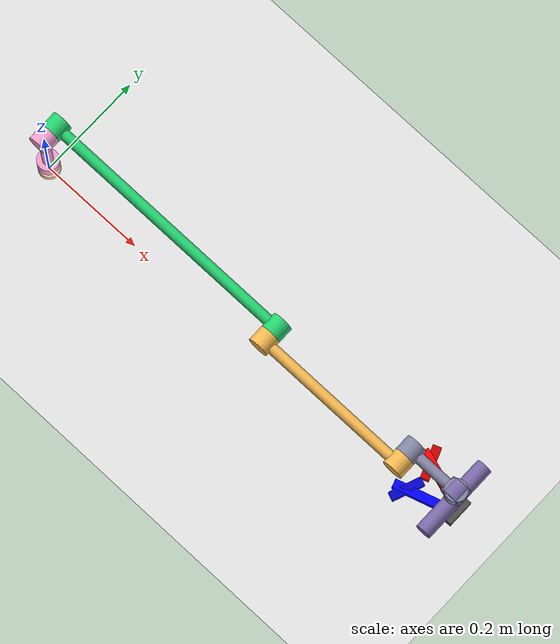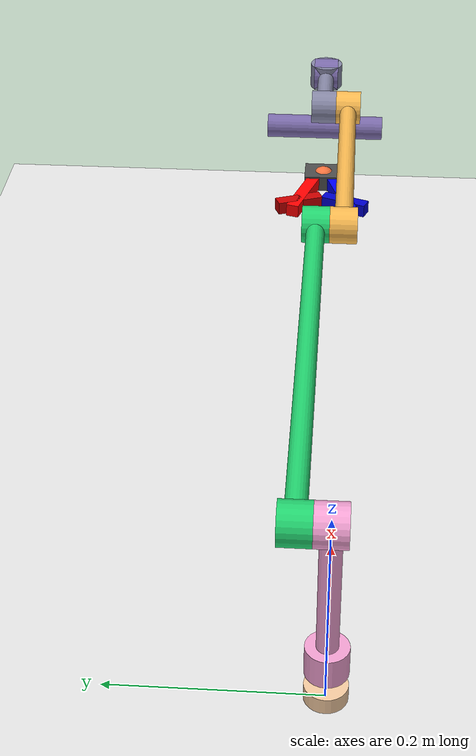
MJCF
<?xml version="1.0.0"?>
<mujoco model="arm2">
    <compiler angle="radian" inertiafromgeom="true" balanceinertia="true"/>
    <option integrator="implicitfast" timestep="0.002"/>

    <asset>
        <material name="joint_part1" rgba="0.525 0.713 0.662 1.0"/>
        <material name="joint_part2" rgba="0.462 0.196 0.411 1.0"/>
        <material name="base" rgba="0.956863 0.796078 0.631373 1.0"/>
        <material name="tip" rgba="0.956 0.450 0.243 1.0"/>
        <material name="link1" rgba="0.949 0.631 0.823 1.0"/>
        <material name="link2" rgba="0.133 0.827 0.435 1.0"/>
        <material name="link3" rgba="0.968 0.721 0.313 1.0"/>
        <material name="link4" rgba="0.52549 0.529412 0.647059 1.0"/>
        <material name="link5" rgba="0.478431 0.415686 0.662745 1.0"/>
    </asset>

    <worldbody>
        <!-- Ground plane -->
        <geom type="plane" size="1 1 0.1" rgba="0.9 0.9 0.9 1"/>

        <!-- Base link -->
        <body name="base_link" pos="0 0 0">
            <inertial pos="0 0 0.015" mass="1" diaginertia="1 1 1"/>
            <geom type="cylinder" size="0.02 0.015" material="base"/>
            <geom type="sphere" size="0.015" material="tip"/>

            <!-- Joint1 (prismatic, y-axis slide) aka left/right slide -->
            <body name="link1" pos="0 0 0.045">
                <inertial pos="0 0 0.075" mass="1" diaginertia="1 1 1"/>
                <joint name="joint1" type="slide" axis="0 1 0" pos="0 0 0" range="-0.5 0.5" damping="0.5"/>
                <geom type="cylinder" size="0.02 0.015" material="link1" pos="0 0 0"/>
                <geom type="cylinder" size="0.01 0.075" material="link1" pos="0 0 0.075"/>
                <geom type="cylinder" size="0.02 0.015" material="link1" pos="0 0 0.15" euler="1.5708 0 0"/>

                <!-- Joint2 (shoulder pitch, y-axis) -->
                <body name="link2" pos="0 0.03 0.15" euler="0 1.5708 0">
                    <inertial pos="0 0 0.25" mass="1" diaginertia="1 1 1"/>
                    <joint name="joint2" type="hinge" axis="0 1 0" pos="0 0 0" range="-6.28 6.28" damping="0.5"/>
                    <geom type="cylinder" size="0.02 0.015" material="link2" pos="0 0 0" euler="1.5708 0 0"/>
                    <geom type="cylinder" size="0.01 0.25" material="link2" pos="0 0 0.25"/>
                    <geom type="cylinder" size="0.02 0.015" material="link2" pos="0 0 0.5" euler="1.5708 0 0"/>

                    <!-- Joint3 (elbow pitch, y-axis) -->
                    <body name="link3" pos="0 -0.03 0.5">
                        <inertial pos="0 0 0.15" mass="1" diaginertia="1 1 1"/>
                        <joint name="joint3" type="hinge" axis="0 1 0" pos="0 0 0" range="-3.14 3.14" damping="0.5"/>
                        <geom type="cylinder" size="0.02 0.015" material="link3" pos="0 0 0" euler="1.5708 0 0"/>
                        <geom type="cylinder" size="0.01 0.15" material="link3" pos="0 0 0.15"/>
                        <geom type="cylinder" size="0.02 0.015" material="link3" pos="0 0 0.3" euler="1.5708 0 0"/>

                        <!-- Joint4 (wrist pitch, y-axis) -->
                        <body name="link4" pos="0 0.03 0.3" euler="0 0 0">
                            <inertial pos="0 0.05 0" mass="1" diaginertia="1 1 1"/>
                            <joint name="joint4" type="hinge" axis="0 1 0" pos="0 0 0" range="-6.28 6.28" damping="0.5"/>
                            <geom type="cylinder" size="0.02 0.015" material="link4" pos="0 0 0" euler="1.5708 0 0"/>
                            <geom type="cylinder" size="0.01 0.05" material="link4" pos="0 0 0.05"/>
                            <geom type="cylinder" size="0.02 0.015" material="link4" pos="0 0 0.1" euler="0 1.5708 0"/>

                            <!-- Joint5 (wrist roll, x-axis) -->
                            <body name="link5" pos="0 0 0.1" euler="0 1.5708 0">
                                <inertial pos="0 0 0.075" mass="0.5" diaginertia="0.5 0.5 0.5"/>
                                <joint name="joint5" type="hinge" axis="1 0 0" pos="0 0 0" range="-3.14 3.14" damping="0.5"/>
                                <geom type="cylinder" size="0.02 0.015" material="link5" pos="0 0 0" euler="1.5708 0 0"/>
                                <geom type="cylinder" size="0.015 0.075" material="link5" pos="0 0 0.075" euler="1.5708 0 0"/>

                                <!-- End effector -->
                                <body name="tool0" pos="0 0 0.15">
                                    <inertial pos="0 0 0" mass="0.1" diaginertia="0.01 0.01 0.01"/>
                                    <geom type="sphere" size="0.015" material="tip"/>

                                    <!-- Gripper Base (palm) -->
                                    <geom type="box" size="0.02 0.025 0.01" pos="0 0 0" rgba="0.3 0.3 0.3 1"/>

                                    <!-- Right Finger (red) -->
                                    <geom type="box" size="0.06 0.008 0.008" pos="0.04 0.02 0" euler="0 0 0.3" rgba="1 0 0 1"/>
                                    <geom type="box" size="0.03 0.008 0.008" pos="0.075 0.03 0" euler="0 0 1.2" rgba="0.8 0 0 1"/>

                                    <!-- Left Finger (blue) -->
                                    <geom type="box" size="0.06 0.008 0.008" pos="0.04 -0.02 0" euler="0 0 -0.3" rgba="0 0 1 1"/>
                                    <geom type="box" size="0.03 0.008 0.008" pos="0.075 -0.03 0" euler="0 0 -1.2" rgba="0 0 0.8 1"/>
                                </body>
                            </body>
                        </body>
                    </body>
                </body>
            </body>
        </body>
    </worldbody>

    <actuator>
        <motor name="motor1" joint="joint1" ctrlrange="-1 1" ctrllimited="true"/>
        <motor name="motor2" joint="joint2" ctrlrange="-1 1" ctrllimited="true"/>
        <motor name="motor3" joint="joint3" ctrlrange="-1 1" ctrllimited="true"/>
        <motor name="motor4" joint="joint4" ctrlrange="-1 1" ctrllimited="true"/>
        <motor name="motor5" joint="joint5" ctrlrange="-1 1" ctrllimited="true"/>
    </actuator>
</mujoco>
